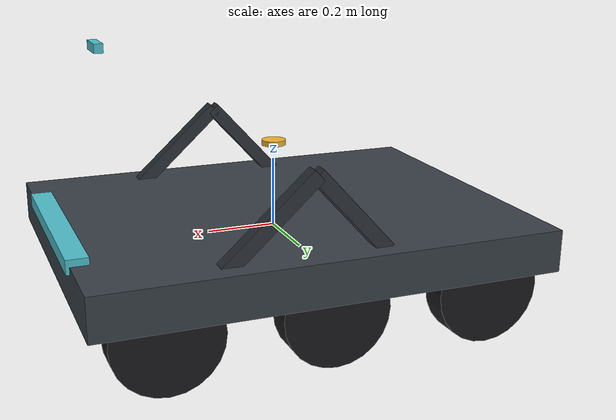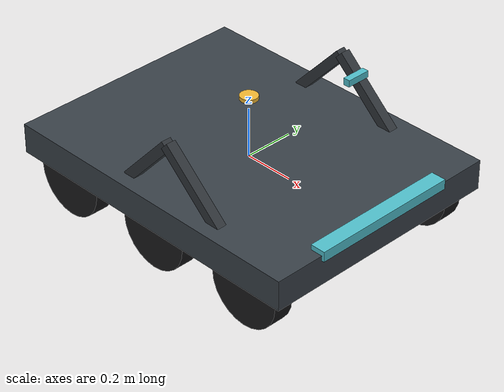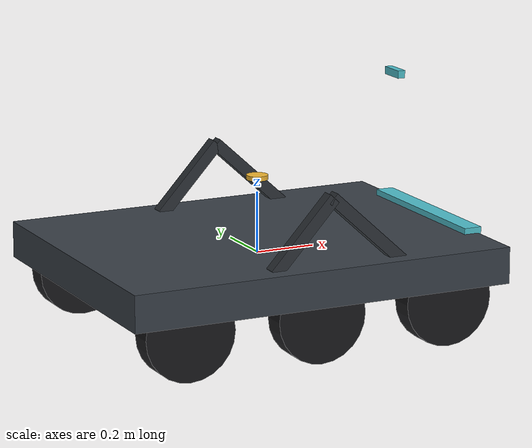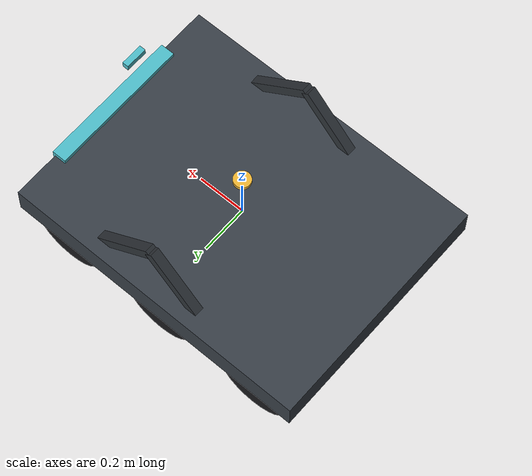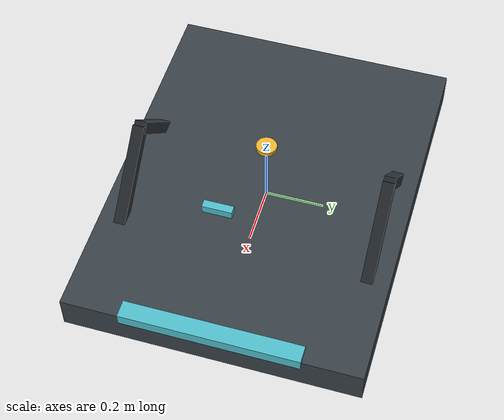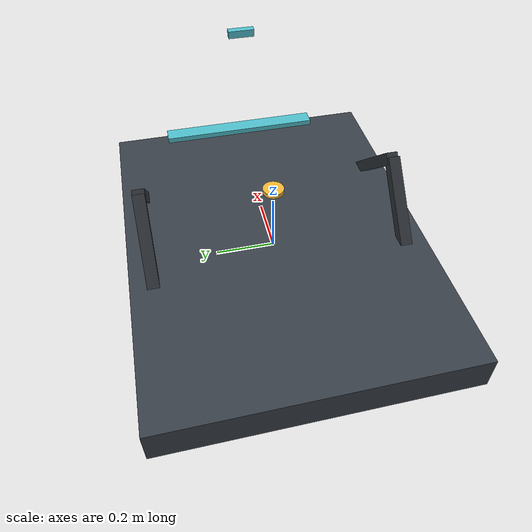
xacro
<?xml version="1.0"?>
<robot xmlns:xacro="http://ros.org/wiki/xacro" name="athena_sim">

  <xacro:arg name="sim" default="true"/>
  <xacro:include filename="$(find athena_gps_nav)/urdf/athena.urdf.xacro"/>

  <!-- =====================================================================
       GAZEBO FORTRESS (IGNITION) SYSTEM PLUGINS
       ===================================================================== -->

  <gazebo>
    <!-- DiffDrive system plugin controlling 6-wheel skid steer.
         Note: tf_topic is sent to /sim/tf instead of /tf because ekf_local
         owns the odom -> base_link transform in the ROS TF tree. -->
    <plugin filename="ignition-gazebo-diff-drive-system"
            name="ignition::gazebo::systems::DiffDrive">
      <left_joint>wheel_front_left_joint</left_joint>
      <left_joint>wheel_mid_left_joint</left_joint>
      <left_joint>wheel_rear_left_joint</left_joint>
      <right_joint>wheel_front_right_joint</right_joint>
      <right_joint>wheel_mid_right_joint</right_joint>
      <right_joint>wheel_rear_right_joint</right_joint>
      <wheel_separation>0.85</wheel_separation>
      <wheel_radius>0.15</wheel_radius>
      <odom_publish_frequency>20</odom_publish_frequency>
      <topic>/cmd_vel</topic>
      <odom_topic>/sim/odom</odom_topic>
      <frame_id>odom</frame_id>
      <child_frame_id>base_link</child_frame_id>
      <tf_topic>/sim/tf</tf_topic>
    </plugin>

    <!-- Joint state publisher for wheel spin visualization -->
    <plugin filename="ignition-gazebo-joint-state-publisher-system"
            name="ignition::gazebo::systems::JointStatePublisher">
      <topic>/joint_states</topic>
    </plugin>
  </gazebo>

  <!-- =====================================================================
       GAZEBO SENSORS
       ===================================================================== -->

  <!-- RealSense D435i RGB-D Camera at camera_link -->
  <gazebo reference="camera_link">
    <sensor name="rgbd_camera" type="rgbd_camera">
      <camera>
        <horizontal_fov>1.5184</horizontal_fov>
        <image>
          <width>640</width>
          <height>480</height>
          <format>R8G8B8</format>
        </image>
        <clip>
          <near>0.25</near>
          <far>4.5</far>
        </clip>
        <depth_camera>
          <clip>
            <near>0.25</near>
            <far>4.5</far>
          </clip>
        </depth_camera>
        <noise>
          <type>gaussian</type>
          <mean>0.0</mean>
          <stddev>0.007</stddev>
        </noise>
      </camera>
      <always_on>1</always_on>
      <update_rate>15</update_rate>
      <visualize>true</visualize>
      <topic>/camera/camera</topic>
    </sensor>
  </gazebo>

  <!-- Pixhawk Cube Orange IMU at imu_link -->
  <gazebo reference="imu_link">
    <sensor name="imu_sensor" type="imu">
      <always_on>1</always_on>
      <update_rate>50</update_rate>
      <visualize>false</visualize>
      <topic>/imu/data_raw</topic>
      <imu>
        <angular_velocity>
          <x><noise type="gaussian"><mean>0.0</mean><stddev>0.0005</stddev></noise></x>
          <y><noise type="gaussian"><mean>0.0</mean><stddev>0.0005</stddev></noise></y>
          <z><noise type="gaussian"><mean>0.0</mean><stddev>0.0005</stddev></noise></z>
        </angular_velocity>
        <linear_acceleration>
          <x><noise type="gaussian"><mean>0.0</mean><stddev>0.005</stddev></noise></x>
          <y><noise type="gaussian"><mean>0.0</mean><stddev>0.005</stddev></noise></y>
          <z><noise type="gaussian"><mean>0.0</mean><stddev>0.005</stddev></noise></z>
        </linear_acceleration>
      </imu>
    </sensor>
  </gazebo>

  <!-- RTK GNSS NavSat sensor at gps_link -->
  <gazebo reference="gps_link">
    <sensor name="navsat_sensor" type="navsat">
      <always_on>1</always_on>
      <update_rate>5</update_rate>
      <topic>/gps/fix_raw</topic>
    </sensor>
  </gazebo>

</robot>

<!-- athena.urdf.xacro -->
<robot xmlns:xacro="http://ros.org/wiki/xacro" name="athena">

  <xacro:arg name="sim" default="false"/>
  <xacro:property name="is_sim" value="$(arg sim)"/>

  <!-- Chassis. Tape measured 2026-09-02, and it agrees with both
       athena_drive's saved track_width and nav2_params' footprint. -->
  <xacro:property name="base_length"  value="1.30"/>  <!-- x, front to back -->
  <xacro:property name="base_width"   value="1.00"/>  <!-- y, side to side  -->
  <xacro:property name="base_height"  value="0.25"/>  <!-- ground to base_link with 30cm wheels -->
  <xacro:property name="track_width"  value="0.85"/>  <!-- wheel centre to centre -->

  <xacro:property name="camera_x"     value="0.50"/>
  <xacro:property name="camera_z"     value="0.55"/>
  <xacro:property name="camera_pitch" value="0.0"/>

  <xacro:property name="imu_x"        value="${camera_x}"/>
  <xacro:property name="imu_z"        value="${camera_z - 0.15}"/>
  <xacro:property name="imu_roll"     value="0.0"/>
  <xacro:property name="imu_pitch"    value="0.0"/>
  <xacro:property name="imu_yaw"      value="0.0"/>

  <xacro:property name="gps_x"        value="0.0"/>
  <xacro:property name="gps_y"        value="0.0"/>
  <xacro:property name="gps_z"        value="0.25"/>

  <!-- Wheel dimensions: 30 cm diameter (radius 0.15 m), 8 cm width -->
  <xacro:property name="base_thick"      value="0.12"/>
  <xacro:property name="wheel_radius"    value="0.15"/>  <!-- 30 cm diameter -->
  <xacro:property name="wheel_width"     value="0.08"/>  <!-- 8 cm width -->
  <xacro:property name="wheel_x"         value="0.45"/>  <!-- front/rear axle offset -->

  <!-- Rocker-Bogie main pivot: 28 cm below depth camera -->
  <xacro:property name="rocker_pivot_x"  value="0.05"/>
  <xacro:property name="rocker_pivot_z"  value="${camera_z - 0.28}"/>

  <material name="athena_body">  <color rgba="0.22 0.25 0.28 1.0"/></material>
  <material name="athena_accent"><color rgba="0.31 0.75 0.80 1.0"/></material>
  <material name="athena_wheel"> <color rgba="0.10 0.10 0.11 1.0"/></material>
  <material name="athena_gps">   <color rgba="0.95 0.72 0.20 1.0"/></material>

  <!-- ==== chassis ======================================================= -->

  <link name="base_link">
    <visual>
      <geometry><box size="${base_length} ${base_width} ${base_thick}"/></geometry>
      <material name="athena_body"/>
    </visual>
    <xacro:if value="${is_sim}">
      <collision>
        <geometry><box size="${base_length} ${base_width} ${base_thick}"/></geometry>
      </collision>
      <inertial>
        <mass value="45.0"/>
        <origin xyz="0 0 0" rpy="0 0 0"/>
        <inertia ixx="${45.0 * (base_width*base_width + base_thick*base_thick) / 12.0}"
                 ixy="0.0" ixz="0.0"
                 iyy="${45.0 * (base_length*base_length + base_thick*base_thick) / 12.0}"
                 iyz="0.0"
                 izz="${45.0 * (base_length*base_length + base_width*base_width) / 12.0}"/>
      </inertial>
    </xacro:if>
  </link>

  <xacro:if value="${is_sim}">
    <gazebo reference="base_link">
      <material>Gazebo/DarkGrey</material>
      <mu1>0.5</mu1>
      <mu2>0.5</mu2>
    </gazebo>
  </xacro:if>

  <link name="base_footprint"/>
  <joint name="base_footprint_joint" type="fixed">
    <parent link="base_link"/>
    <child  link="base_footprint"/>
    <origin xyz="0 0 ${-base_height}" rpy="0 0 0"/>
  </joint>

  <!-- A nose block, so "forward" is unmistakable in a 3D view.  A bare box
       looks the same from both ends and you cannot tell a reversing rover
       from an advancing one. -->
  <link name="nose_marker">
    <visual>
      <geometry><box size="0.06 ${base_width * 0.6} 0.04"/></geometry>
      <material name="athena_accent"/>
    </visual>
    <xacro:if value="${is_sim}">
      <collision>
        <geometry><box size="0.06 ${base_width * 0.6} 0.04"/></geometry>
      </collision>
    </xacro:if>
  </link>
  <joint name="nose_joint" type="fixed">
    <parent link="base_link"/>
    <child  link="nose_marker"/>
    <origin xyz="${base_length/2 - 0.02} 0 ${base_thick/2}" rpy="0 0 0"/>
  </joint>

  <!-- ==== rocker-bogie suspension and six wheels ====================== -->

  <material name="athena_rocker"><color rgba="0.18 0.20 0.22 1.0"/></material>

  <xacro:macro name="rocker_bogie_assembly" params="side y_sign">
    <!-- Rocker link and main pivot joint -->
    <link name="rocker_${side}">
      <visual>
        <!-- Beam from pivot forward to front wheel -->
        <origin xyz="0.20 0 -0.185" rpy="0 0.74 0"/>
        <geometry><box size="0.55 0.04 0.04"/></geometry>
        <material name="athena_rocker"/>
      </visual>
      <visual>
        <!-- Beam from pivot backward to bogie joint -->
        <origin xyz="-0.10 0 -0.11" rpy="0 -0.83 0"/>
        <geometry><box size="0.30 0.04 0.04"/></geometry>
        <material name="athena_rocker"/>
      </visual>
      <xacro:if value="${is_sim}">
        <collision>
          <origin xyz="0.20 0 -0.185" rpy="0 0.74 0"/>
          <geometry><box size="0.55 0.04 0.04"/></geometry>
        </collision>
        <inertial>
          <mass value="3.0"/>
          <origin xyz="0.10 0 -0.10" rpy="0 0 0"/>
          <inertia ixx="0.02" ixy="0.0" ixz="0.0" iyy="0.08" iyz="0.0" izz="0.08"/>
        </inertial>
      </xacro:if>
    </link>

    <xacro:unless value="${is_sim}">
      <joint name="rocker_${side}_joint" type="fixed">
        <parent link="base_link"/>
        <child  link="rocker_${side}"/>
        <origin xyz="${rocker_pivot_x} ${y_sign * track_width/2} ${rocker_pivot_z}" rpy="0 0 0"/>
      </joint>
    </xacro:unless>

    <xacro:if value="${is_sim}">
      <joint name="rocker_${side}_joint" type="revolute">
        <parent link="base_link"/>
        <child  link="rocker_${side}"/>
        <origin xyz="${rocker_pivot_x} ${y_sign * track_width/2} ${rocker_pivot_z}" rpy="0 0 0"/>
        <axis xyz="0 1 0"/>
        <limit lower="-0.45" upper="0.45" effort="120.0" velocity="5.0"/>
        <dynamics damping="1.0" friction="0.5"/>
      </joint>
    </xacro:if>

    <!-- Bogie link and pivot joint -->
    <link name="bogie_${side}">
      <visual>
        <!-- Beam from bogie pivot forward to mid wheel and rear to back wheel -->
        <origin xyz="-0.075 0 -0.075" rpy="0 0.0 0"/>
        <geometry><box size="0.48 0.04 0.04"/></geometry>
        <material name="athena_rocker"/>
      </visual>
      <xacro:if value="${is_sim}">
        <collision>
          <origin xyz="-0.075 0 -0.075" rpy="0 0.0 0"/>
          <geometry><box size="0.48 0.04 0.04"/></geometry>
        </collision>
        <inertial>
          <mass value="2.5"/>
          <origin xyz="-0.075 0 -0.075" rpy="0 0 0"/>
          <inertia ixx="0.015" ixy="0.0" ixz="0.0" iyy="0.05" iyz="0.0" izz="0.05"/>
        </inertial>
      </xacro:if>
    </link>

    <xacro:unless value="${is_sim}">
      <joint name="bogie_${side}_joint" type="fixed">
        <parent link="rocker_${side}"/>
        <child  link="bogie_${side}"/>
        <origin xyz="-0.20 0.0 -0.22" rpy="0 0 0"/>
      </joint>
    </xacro:unless>

    <xacro:if value="${is_sim}">
      <joint name="bogie_${side}_joint" type="revolute">
        <parent link="rocker_${side}"/>
        <child  link="bogie_${side}"/>
        <origin xyz="-0.20 0.0 -0.22" rpy="0 0 0"/>
        <axis xyz="0 1 0"/>
        <limit lower="-0.45" upper="0.45" effort="100.0" velocity="5.0"/>
        <dynamics damping="1.0" friction="0.5"/>
      </joint>
    </xacro:if>

    <!-- Front Wheel attached to Rocker -->
    <xacro:wheel_instance name="wheel_front_${side}" parent="rocker_${side}"
                          x="0.40" y="0.0" z="-0.37"/>

    <!-- Mid Wheel attached to Bogie -->
    <xacro:wheel_instance name="wheel_mid_${side}" parent="bogie_${side}"
                          x="0.15" y="0.0" z="-0.15"/>

    <!-- Rear Wheel attached to Bogie -->
    <xacro:wheel_instance name="wheel_rear_${side}" parent="bogie_${side}"
                          x="-0.30" y="0.0" z="-0.15"/>
  </xacro:macro>

  <!-- Wheel instance macro (30 cm diameter, 3.5 kg mass) -->
  <xacro:macro name="wheel_instance" params="name parent x y z">
    <link name="${name}">
      <visual>
        <geometry><cylinder radius="${wheel_radius}" length="${wheel_width}"/></geometry>
        <material name="athena_wheel"/>
      </visual>
      <xacro:if value="${is_sim}">
        <collision>
          <geometry><cylinder radius="${wheel_radius}" length="${wheel_width}"/></geometry>
        </collision>
        <inertial>
          <mass value="3.5"/>
          <origin xyz="0 0 0" rpy="0 0 0"/>
          <inertia ixx="0.0215" ixy="0.0" ixz="0.0"
                   iyy="0.0215" iyz="0.0"
                   izz="0.0394"/>
        </inertial>
      </xacro:if>
    </link>

    <xacro:unless value="${is_sim}">
      <joint name="${name}_joint" type="fixed">
        <parent link="${parent}"/>
        <child  link="${name}"/>
        <origin xyz="${x} ${y} ${z}" rpy="1.5708 0 0"/>
      </joint>
    </xacro:unless>

    <xacro:if value="${is_sim}">
      <joint name="${name}_joint" type="continuous">
        <parent link="${parent}"/>
        <child  link="${name}"/>
        <origin xyz="${x} ${y} ${z}" rpy="1.5708 0 0"/>
        <axis xyz="0 0 1"/>
        <dynamics damping="0.08" friction="0.05"/>
        <limit effort="50.0" velocity="20.0"/>
      </joint>
      <gazebo reference="${name}">
        <material>Gazebo/Black</material>
        <mu1>1.0</mu1>
        <mu2>0.2</mu2>
        <kp>1000000.0</kp>
        <kd>100.0</kd>
        <minDepth>0.005</minDepth>
      </gazebo>
    </xacro:if>
  </xacro:macro>

  <xacro:rocker_bogie_assembly side="left"  y_sign="1"/>
  <xacro:rocker_bogie_assembly side="right" y_sign="-1"/>

  <!-- ==== sensors ======================================================= -->

  <link name="camera_link">
    <visual>
      <geometry><box size="0.025 0.09 0.025"/></geometry>
      <material name="athena_accent"/>
    </visual>
  </link>
  <joint name="camera_joint" type="fixed">
    <parent link="base_link"/>
    <child  link="camera_link"/>
    <origin xyz="${camera_x} 0 ${camera_z}" rpy="0 ${camera_pitch} 0"/>
  </joint>

  <link name="imu_link"/>
  <joint name="imu_joint" type="fixed">
    <parent link="base_link"/>
    <child  link="imu_link"/>
    <origin xyz="${imu_x} 0 ${imu_z}"
            rpy="${imu_roll} ${imu_pitch} ${imu_yaw}"/>
  </joint>

  <link name="gps_link">
    <visual>
      <geometry><cylinder radius="0.035" length="0.015"/></geometry>
      <material name="athena_gps"/>
    </visual>
  </link>
  <joint name="gps_joint" type="fixed">
    <parent link="base_link"/>
    <child  link="gps_link"/>
    <origin xyz="${gps_x} ${gps_y} ${gps_z}" rpy="0 0 0"/>
  </joint>

</robot>
